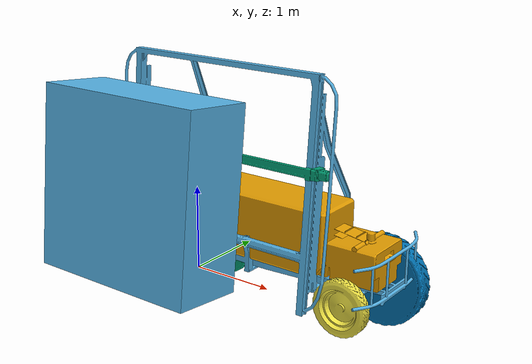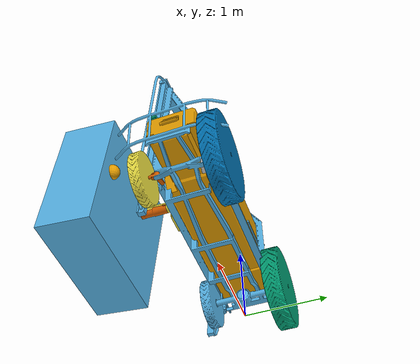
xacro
<?xml version="1.0"?>
<robot xmlns:xacro="http://www.ros.org/wiki/xacro" name="apple_kraken">
  <!-- Enable setting arguments from the launch file -->

  <!-- PARAMETERS -->
  <!-- Chassis -->
  <xacro:property name="wheel_width" value="0.132" />
  <xacro:property name="front_axis_X" value="2.2" />
  <xacro:property name="wheel_base_rear" value="0.35" />
  <xacro:property name="wheel_base_front" value="0.225" />
  <xacro:property name="wheel_radius" value="0.3" />

  <!-- Manipulator -->
  <xacro:property name="manip_x" value="1.1" />
  <xacro:property name="manip_y" value="0.0" />
  <xacro:property name="manip_z" value="0.0" />

  <!--  CHASIS: begin  -->

    <link name="base_link">
      <inertial>
        <origin rpy="0.000000 -0.000000 -1.570796" xyz="1.003638 0.000000 0.000000"/>
        <!-- TODO: Update mass as volume from Meshlab will overestimate the mass -->
        <mass value="300"/>
        <inertia ixx="50.0" ixy="0.0" ixz="0.0" iyy="240.0" iyz="0.0" izz="250.0"/>
      </inertial>
      <visual>
        <origin rpy="0.000000 -0.000000 -1.570796" xyz="1.101831 0.000000 0.000000"/>
        <geometry>
          <mesh filename="meshes/VehicleBody/VehicleBody.dae" scale="1 1 1"/>
        </geometry>
      </visual>
      <collision>
        <origin rpy="1.570796 -0.000000 1.570796" xyz="0.002268 -0.000000 0.668965"/>
        <geometry>
           <box size="0.592215 0.491737 0.491032"/>
         </geometry>
       </collision>
       <collision>
        <origin rpy="-1.570796 -0.000000 -3.141593" xyz="0.963687 -0.000000 0.804149"/>
        <geometry>
           <box size="1.427517 0.762107 0.592215"/>
         </geometry>
       </collision>
       <collision>
        <origin rpy="0.000000 -0.000000 0.000000" xyz="2.197615 0.000000 0.762109"/>
        <geometry>
           <box size="0.583352 0.544691 0.264003"/>
         </geometry>
       </collision>
       <collision>
        <origin rpy="-1.570796 -0.000000 -3.141593" xyz="2.083368 0.000000 0.526601"/>
        <geometry>
           <box size="0.811846 0.207011 0.097965"/>
         </geometry>
       </collision>
       <collision>
        <origin rpy="1.570796 -0.000000 1.570796" xyz="-0.288170 -0.000000 0.522611"/>
        <geometry>
           <box size="0.592215 0.236236 0.089846"/>
         </geometry>
       </collision>
       <collision>
        <origin rpy="1.570796 -0.000000 1.570796" xyz="2.5402429 0.000000 0.562592"/>
        <geometry>
           <box size="0.437199 0.131902 0.055878"/>
         </geometry>
       </collision>
       <collision>
        <origin rpy="1.570796 -0.000000 1.570796" xyz="1.791692 -0.000000 0.907655"/>
        <geometry>
           <box size="0.592215 0.555096 0.228493"/>
         </geometry>
       </collision>

    </link>

    <link name="wheel_rear_right_link">
      <inertial>
        <origin rpy="0 0 0" xyz="0 0.0 0.0"/>
        <mass value="24.5"/>
        <inertia ixx="0.787" ixy="0.0" ixz="0.0" iyy="0.787" iyz="0.0" izz="1.309"/>
      </inertial>

      <visual>
        <origin rpy="0 1.571 0" xyz="0 0 0"/>
        <geometry>
          <mesh filename="meshes/Wheels/WheelRight.dae" scale="1 1 1"/>
        </geometry>
      </visual>

      <collision>
        <origin rpy="0 0 0" xyz="0 0 ${-wheel_width/2}"/>
        <geometry>
          <cylinder radius="${wheel_radius}" length="${wheel_width}" />
        </geometry>
      </collision>
    </link>

    <link name="wheel_rear_left_link">
      <inertial>
        <origin rpy="0 0 0" xyz="0 0.0 ${wheel_width}"/>
        <mass value="24.5"/>
        <inertia ixx="0.787" ixy="0.0" ixz="0.0" iyy="0.787" iyz="0.0" izz="1.309"/>
      </inertial>

      <visual>
        <origin rpy="0 1.571 0 " xyz="0 0 0.0"/>
        <geometry>
          <mesh filename="meshes/Wheels/WheelLeft.dae" scale="1 1 1"/>
        </geometry>
      </visual>

      <collision>
        <origin rpy="0 0 0" xyz="0 0 ${wheel_width/2}"/>
        <geometry>
          <cylinder radius="${wheel_radius}" length="${wheel_width}" />
        </geometry>
      </collision>
    </link>

    <link name="wheel_front_right_link">
      <inertial>
        <origin rpy="0 0 0" xyz="0 0.0 ${wheel_width/2}"/>
        <mass value="24.5"/>
        <inertia ixx="0.787" ixy="0.0" ixz="0.0" iyy="0.787" iyz="0.0" izz="1.309"/>
      </inertial>

      <visual>
        <origin rpy="0 1.571 0" xyz="0 0 0"/>
        <geometry>
          <mesh filename="meshes/Wheels/WheelRight.dae" scale="1 1 1"/>
        </geometry>
      </visual>

      <collision>
        <origin rpy="0 0 0" xyz="0 0 ${-wheel_width/2}"/>
        <geometry>
          <cylinder radius="${wheel_radius}" length="${wheel_width}" />
        </geometry>
      </collision>
    </link>

    <link name="wheel_front_left_link">
      <inertial>
        <origin rpy="0 0 0" xyz="0 0.0 ${wheel_width/2}"/>
        <mass value="24.5"/>
        <inertia ixx="0.787" ixy="0.0" ixz="0.0" iyy="0.787" iyz="0.0" izz="1.309"/>
      </inertial>

      <visual>
        <origin rpy="0 1.571 0" xyz="0 0 0"/>
        <geometry>
          <mesh filename="meshes/Wheels/WheelLeft.dae" scale="1 1 1"/>
        </geometry>
      </visual>

      <collision>
        <origin rpy="0 0 0" xyz="0 0 ${wheel_width/2}"/>
        <geometry>
          <cylinder radius="${wheel_radius}" length="${wheel_width}" />
        </geometry>
      </collision>
    </link>

    <link name="steering_front_right_link">
      <inertial>
        <origin rpy="0 0 -1.571" xyz="0 0 -0.04"/>
        <mass value="20.0"/>
        <inertia ixx="1" ixy="0.0" ixz="0.0" iyy="1" iyz="0.0" izz="1"/>
      </inertial>

      <visual>
        <origin rpy="0 0 -1.571" xyz="0 -0.03 -0.03"/>
        <geometry>
          <mesh filename="meshes/Steering/SteeringArmRight.dae" scale="0.6 0.6 0.6"/>
        </geometry>
      </visual>
    </link>

    <link name="steering_front_left_link">
      <inertial>
        <origin rpy="0 0 -1.571" xyz="0 0 -0.04"/>
        <mass value="20.0"/>
        <inertia ixx="1" ixy="0.0" ixz="0.0" iyy="1" iyz="0.0" izz="1"/>
      </inertial>
      <visual>
        <origin rpy="0 0 -1.571" xyz="0 0.03 -0.03"/>
        <geometry>
          <mesh filename="meshes/Steering/SteeringArmLeft.dae" scale="0.6 0.6 0.6"/>
        </geometry>
      </visual>
    </link>

    <link name="lidar_mount">
      <inertial>
        <origin rpy="0 0 0" xyz="0 0 0"/>
        <mass value="1.0"/>
        <inertia ixx="0.1" ixy="0.0" ixz="0.0" iyy="0.1" iyz="0.0" izz="0.1"/>
      </inertial>
    </link>

    <link name="conveyor_belt">
      <inertial>
        <origin rpy="0 0 0" xyz="0 0 0"/>
        <mass value="5.0"/>
        <inertia ixx="0.1" ixy="0.0" ixz="0.0" iyy="0.5" iyz="0.0" izz="0.5"/>
      </inertial>
      <visual>
        <origin rpy="0 0 0" xyz="0 0 0"/>
        <geometry>
          <mesh filename="meshes/ConveyorBelt/ConveyorBelt.dae" scale="1.0 1.0 1.0"/>
        </geometry>
      </visual>
    </link>

    <joint name="wheel_rear_right_joint" type="continuous">
      <origin rpy="-1.570796 0.000000 0.000000" xyz="0.000000 ${-wheel_base_rear} ${wheel_radius}"/>
      <parent link="base_link"/>
      <child link="wheel_rear_right_link"/>
      <axis xyz="0.0 0.0 1.0"/>
      <limit effort="1000000.0" velocity="1000.0"/>
    </joint>

    <joint name="wheel_rear_left_joint" type="continuous">
      <origin rpy="-1.570796 -0.000000 0.000000" xyz="0.000000 ${wheel_base_rear} ${wheel_radius}"/>
      <parent link="base_link"/>
      <child link="wheel_rear_left_link"/>
      <axis xyz="0.0 0.0 1.0"/>
      <limit effort="1000000.0" velocity="1000.0"/>
    </joint>

    <joint name="wheel_front_right_joint" type="continuous">
      <origin rpy="-1.571 0 0" xyz="0 ${wheel_base_front-wheel_base_rear} 0"/>
      <parent link="steering_front_right_link"/>
      <child link="wheel_front_right_link"/>
      <axis xyz="0.0 0.0 1.0"/>
      <limit effort="1000000.0" velocity="1000.0"/>
    </joint>

    <joint name="wheel_front_left_joint" type="continuous">
      <origin rpy="-1.571 0 0" xyz="0 ${-wheel_base_front+wheel_base_rear} 0"/>
      <parent link="steering_front_left_link"/>
      <child link="wheel_front_left_link"/>
      <axis xyz="0.0 0.0 1.0"/>
      <limit effort="1000000.0" velocity="1000.0"/>
    </joint>

    <joint name="steering_front_right_joint" type="revolute">
      <origin rpy="0 0 0" xyz="${front_axis_X} ${-wheel_base_front} ${wheel_radius}"/>
      <parent link="base_link"/>
      <child link="steering_front_right_link"/>
      <axis xyz="0.0 0.0 1.0"/>
      <dynamics damping="2.0" friction="1.0"/>
      <limit effort="1000000.0" lower="-0.5235" upper="0.5235" velocity="100"/>
    </joint>

    <joint name="steering_front_left_joint" type="revolute">
      <origin rpy="0 0 0" xyz="${front_axis_X} ${wheel_base_front} ${wheel_radius}"/>
      <parent link="base_link"/>
      <child link="steering_front_left_link"/>
      <axis xyz="0.0 0.0 1.0"/>
      <dynamics damping="2.0" friction="1.0"/>
      <limit effort="1000000.0" lower="-0.5235" upper="0.5235" velocity="100"/>
    </joint>

    <joint name="lidar_mount_joint" type="fixed">
      <origin rpy="0 0 0" xyz="2.2804451 0.0 0.8967377"/>
      <parent link="base_link"/>
      <child link="lidar_mount"/>
    </joint>

    <joint name="conveyor_belt_joint" type="fixed">
      <origin rpy="0 0 1.571" xyz="1.1043353 0 0.0"/>
      <parent link="base_link"/>
      <child link="conveyor_belt"/>
    </joint>

  <!-- CHASIS: end -->

  <!-- MANIPULATOR: begin -->

    <link name="kraken_manipulator_link_0">
      <inertial>
        <origin rpy="0.1745 0 0" xyz="0.0 -0.6 2.0"/>
        <mass value="25.0"/>
        <inertia ixx="1.0" ixy="0.0" ixz="0.0" iyy="1.0" iyz="0.0" izz="1.0"/>
      </inertial>

      <visual>
        <origin rpy="0 0 -1.571" xyz="0.0 0.0 0"/>
        <geometry>
          <mesh filename="meshes/ChassisAndFrame/ChassisAndFrame.dae" scale="1 1 1"/>
        </geometry>
      </visual>
       <collision>
        <origin rpy="-0.0872664626 0.000000 0.000000" xyz="-0.3812585 -0.374285 2.5734301"/>
        <geometry>
           <box size="2.087586 0.088237 0.062286"/>
         </geometry>
        </collision>
    </link>

    <link name="kraken_manipulator_link_1">
      <inertial>
        <origin rpy="0 0 0" xyz="0.0 0.0 0.0"/>
        <mass value="25.0"/>
        <inertia ixx="0.5" ixy="0.0" ixz="0.0" iyy="8.0" iyz="0.0" izz="8.0"/>
      </inertial>

      <visual>
        <origin rpy="0 0 -1.571" xyz="0.2528269 0.0 0"/>
        <geometry>
          <mesh filename="meshes/VacuumMechanismPart01/VacuumMechanismPart01.dae" scale="1 1 1"/>
        </geometry>
      </visual>
      <collision>
        <origin rpy="-0.000 -0.000000 0.000000" xyz="0.2732149 0.062564 -0.000045"/>
        <geometry>
           <box size="2.019587 0.172379 0.067739"/>
         </geometry>
       </collision>
    </link>

    <link name="kraken_manipulator_link_2">
      <inertial>
        <origin rpy="0 0 0" xyz="0.0 0.0 0.0"/>
        <mass value="25.0"/>
        <inertia ixx="0.804004" ixy="0.0" ixz="0.0" iyy="0.9002936" iyz="0.0" izz="1.0483408"/>
      </inertial>

      <visual>
        <origin rpy="1.571 0 -1.571" xyz="0.0 0.0 0"/>
        <geometry>
          <mesh filename="meshes/VacuumMechanismPart02/VacuumMechanismPart02.dae" scale="1 1 1"/>
        </geometry>
      </visual>
       <collision>
        <origin rpy="-1.570829 0 0 " xyz="-0.066974 -0.2 -0.000000"/>
        <geometry>
           <cylinder  length="0.3" radius="0.06"/>
         </geometry>
       </collision>
    </link>

    <!-- Nozzle -->
    <link name="kraken_manipulator_link_3">
      <inertial>
        <origin rpy="0 0 0" xyz="0.0 0.0 0.0"/>
        <mass value="10.0"/>
        <inertia ixx="0.5" ixy="0.0" ixz="0.0" iyy="0.5" iyz="0.0" izz="0.2"/>
      </inertial>

      <visual>
        <origin rpy="0 -1.571 0" xyz="0.0 0.0 0"/>
        <geometry>
          <mesh filename="meshes/VacuumNozzle/VacuumNozzle.dae" scale="1 1 1"/>
        </geometry>
      </visual>
    </link>

    <!-- Nozzle02 -->
    <link name="kraken_manipulator_link_4">
      <inertial>
        <origin rpy="0 0 0" xyz="0.0 0.0 0.0"/>
        <mass value="10.0"/>
        <inertia ixx="0.5" ixy="0.0" ixz="0.0" iyy="0.5" iyz="0.0" izz="0.2"/>
      </inertial>

      <visual>
        <origin rpy="0 -1.4835298642 0" xyz="0.0 0.0 0"/>
        <geometry>
          <mesh filename="meshes/VacuumNozzle02/VacuumNozzle02.dae" scale="1 1 1"/>
        </geometry>
      </visual>

      <collision>
        <origin rpy="0 0 0" xyz="0 0 0.19"/>
        <geometry>
           <cylinder  length="0.38" radius="0.06"/>
         </geometry>
       </collision>
    </link>

    <link name="Effector">
      <inertial>
        <origin rpy="0 0 0" xyz="0.0 0.0 0.0"/>
        <mass value="1.0"/>
        <inertia ixx="0.1" ixy="0.0" ixz="0.0" iyy="0.1" iyz="0.0" izz="0.1"/>
      </inertial>

      <collision>
        <origin rpy="0 0 0" xyz="0.0 0.0 0"/>
        <geometry>
          <sphere  radius="0.05"/>
        </geometry>
      </collision>

      <visual>
        <origin rpy="0 0 0" xyz="0.0 0.0 0"/>
        <geometry>
          <box  size="0.12 0.12 0.12"/>
        </geometry>
      </visual>
    </link>

    <link name="RetrievalChute">
      <inertial>
        <origin rpy="0 0 0" xyz="0.0 0.0 0.0"/>
        <mass value="1.0"/>
        <inertia ixx="0.1" ixy="0.0" ixz="0.0" iyy="0.1" iyz="0.0" izz="0.1"/>
      </inertial>
    </link>

    <link name="Rest">
      <inertial>
        <origin rpy="0 0 0" xyz="0.0 0.0 0.0"/>
        <mass value="10.0"/>
        <inertia ixx="0.5" ixy="0.0" ixz="0.0" iyy="0.5" iyz="0.0" izz="0.2"/>
      </inertial>

      <visual>
        <origin rpy="0 0 0" xyz="0.0 0.0 0"/>
        <geometry>
          <sphere  radius="0.1"/>
        </geometry>
      </visual>
    </link>

    <link name="Reach">
      <inertial>
        <origin rpy="0 0 0" xyz="0.0 0.0 0.0"/>
        <mass value="10.0"/>
        <inertia ixx="0.5" ixy="0.0" ixz="0.0" iyy="0.5" iyz="0.0" izz="0.2"/>
      </inertial>

      <visual>
        <origin rpy="0 0 0" xyz="0.0 0.0 0"/>
        <geometry>
          <box size="1.8 0.75 1.8"/>
        </geometry>
      </visual>
    </link>

    <joint name="kraken_manipulator_joint_0" type="fixed">
      <origin rpy="0 0 0" xyz="${manip_x} 0 0"/>
      <parent link="base_link"/>
      <child link="kraken_manipulator_link_0"/>
    </joint>

    <!-- Joint that moves manipulator along Z-Axis -->
    <joint name="kraken_manipulator_joint_1" type="prismatic">
      <origin rpy="-0.0872664626 0 0" xyz="${manip_x-0.650001} -0.511055 1.6569"/>
      <parent link="base_link"/>
      <child link="kraken_manipulator_link_1"/>
      <axis xyz="0.0 0.0 1.0"/>
      <dynamics damping="2.0" friction="1.0"/>
      <limit effort="1000.0" lower="-1.2" upper="0.67" velocity="1.0"/>
    </joint>

    <!-- Joint that moves manipulator along X-Axis -->
    <joint name="kraken_manipulator_joint_2" type="prismatic">
      <origin rpy="0 1.571 0" xyz="0 0 0"/>
      <parent link="kraken_manipulator_link_1"/>
      <child link="kraken_manipulator_link_2"/>
      <axis xyz="0.0 0.0 1.0"/>
      <dynamics damping="2.0" friction="1.0"/>
      <limit effort="1000.0" lower="-0.8" upper="1.2" velocity="1.0"/>
    </joint>

    <!-- Nozzle -->
    <joint name="kraken_manipulator_joint_3" type="prismatic">
      <origin rpy="1.571 0 0" xyz="-0.067 -0.35 -0.004"/>
      <parent link="kraken_manipulator_link_2"/>
      <child link="kraken_manipulator_link_3"/>
      <axis xyz="0.0 0.0 1.0"/>
      <dynamics damping="2.0" friction="1.0"/>
      <limit effort="1000.0" lower="0" upper="0.3" velocity="1.0"/>
    </joint>

    <!-- Nozzle02 -->
    <joint name="kraken_manipulator_joint_4" type="prismatic">
      <origin rpy="0 0 0" xyz="0 0 0"/>
      <parent link="kraken_manipulator_link_3"/>
      <child link="kraken_manipulator_link_4"/>
      <axis xyz="0.0 0.0 1.0"/>
      <dynamics damping="2.0" friction="1.0"/>
      <limit effort="1000.0" lower="0" upper="0.3" velocity="1.0"/>
    </joint>

    <joint name="rest_joint" type="fixed">
      <origin rpy="0 0 0" xyz="${manip_x+0.2558164} -1.2641881 1.6814755"/>
      <parent link="base_link"/>
      <child link="Rest"/>
    </joint>

    <joint name="reach_joint" type="fixed">
      <origin rpy="-0.10471975512 0 0" xyz="${manip_x-0.4} -1.65 1.6"/>
      <parent link="base_link"/>
      <child link="Reach"/>
    </joint>

    <joint name="effector_joint" type="fixed">
      <origin rpy="0 0 0" xyz="-0.0100173 -0.0020601 0.4332509"/>
      <parent link="kraken_manipulator_link_4"/>
      <child link="Effector"/>
    </joint>

    <joint name="retrieval_chute_joint" type="fixed">
      <origin rpy="0 0 0" xyz="1.3339844 -0.2378311 1.3847573"/>
      <parent link="base_link"/>
      <child link="RetrievalChute"/>
    </joint>

  <!-- MANIPULATOR: end -->

</robot>
